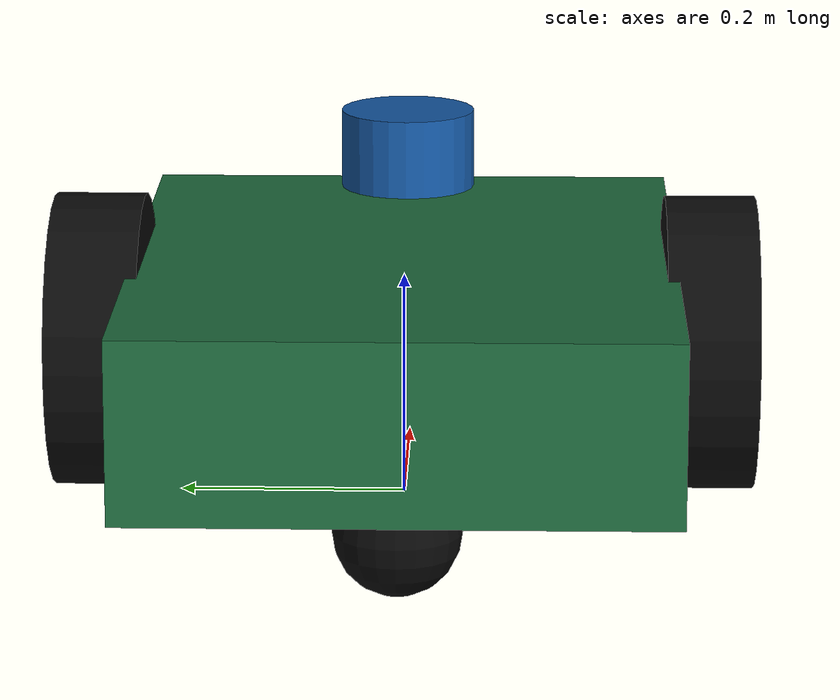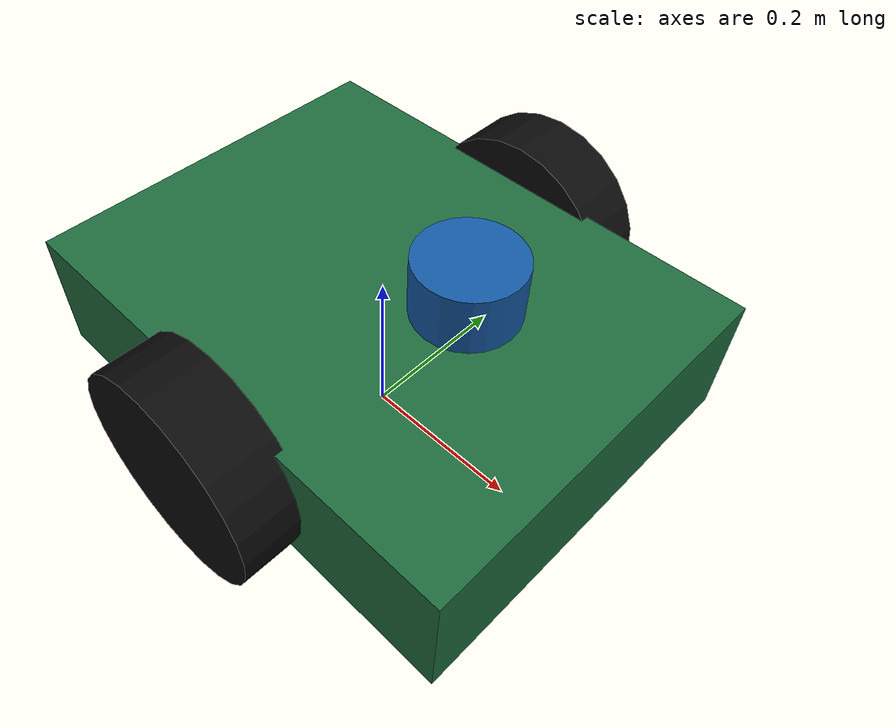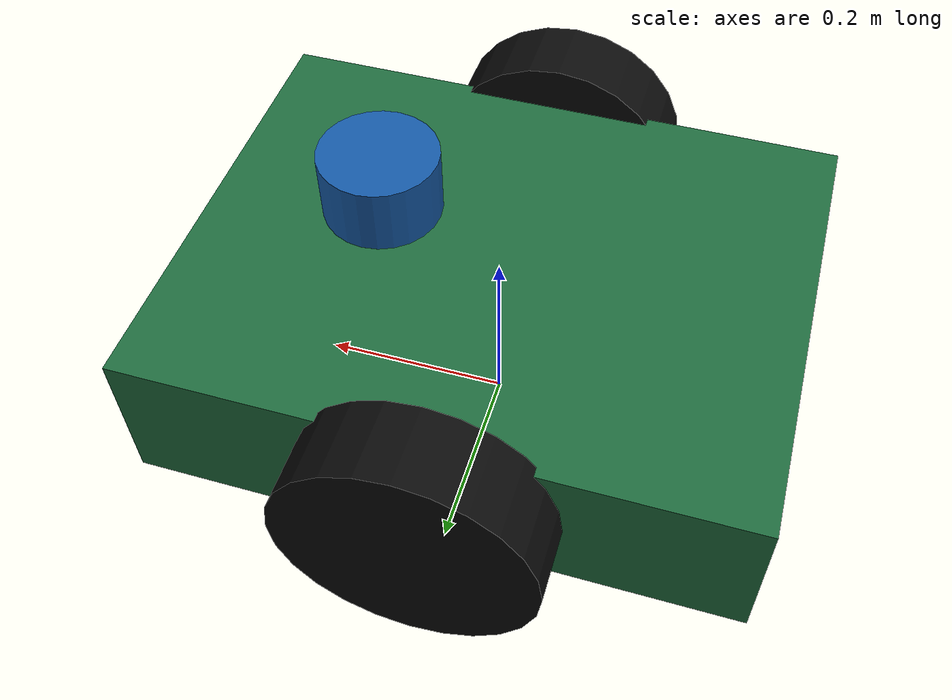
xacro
<?xml version="1.0"?>
<robot name="ubc_rover" xmlns:xacro="http://www.ros.org/wiki/xacro">
  <xacro:include filename="$(find rover_description)/urdf/materials.xacro"/>

  <xacro:property name="wheel_radius" value="0.13"/>
  <xacro:property name="wheel_width" value="0.08"/>
  <xacro:property name="wheel_y" value="0.27"/>

  <link name="base_footprint"/>
  <joint name="base_footprint_joint" type="fixed">
    <parent link="base_footprint"/><child link="base_link"/>
    <origin xyz="0 0 0.14"/>
  </joint>

  <link name="base_link">
    <visual><geometry><box size="0.62 0.48 0.16"/></geometry><material name="rover_green"/></visual>
    <collision><geometry><box size="0.62 0.48 0.16"/></geometry></collision>
    <inertial><mass value="18"/><origin xyz="0 0 0"/><inertia ixx="0.384" ixy="0" ixz="0" iyy="0.674" iyz="0" izz="0.762"/></inertial>
  </link>

  <xacro:macro name="drive_wheel" params="name y">
    <link name="${name}_wheel_link">
      <visual><origin rpy="1.5708 0 0"/><geometry><cylinder radius="${wheel_radius}" length="${wheel_width}"/></geometry><material name="dark_rubber"/></visual>
      <collision><origin rpy="1.5708 0 0"/><geometry><cylinder radius="${wheel_radius}" length="${wheel_width}"/></geometry></collision>
      <inertial><mass value="1.2"/><inertia ixx="0.006" ixy="0" ixz="0" iyy="0.01" iyz="0" izz="0.006"/></inertial>
    </link>
    <joint name="${name}_wheel_joint" type="continuous">
      <parent link="base_link"/><child link="${name}_wheel_link"/>
      <origin xyz="0 ${y} 0" rpy="0 0 0"/><axis xyz="0 1 0"/>
    </joint>
  </xacro:macro>
  <xacro:drive_wheel name="left" y="${wheel_y}"/>
  <xacro:drive_wheel name="right" y="-${wheel_y}"/>

  <link name="caster_link">
    <visual><geometry><sphere radius="0.055"/></geometry><material name="dark_rubber"/></visual>
    <collision><geometry><sphere radius="0.055"/></geometry></collision>
    <inertial><mass value="0.2"/><inertia ixx="0.0002" ixy="0" ixz="0" iyy="0.0002" iyz="0" izz="0.0002"/></inertial>
  </link>
  <joint name="caster_joint" type="fixed">
    <parent link="base_link"/><child link="caster_link"/><origin xyz="-0.25 0 -0.1"/>
  </joint>

  <link name="lidar_link">
    <visual><geometry><cylinder radius="0.06" length="0.07"/></geometry><material name="sensor_blue"/></visual>
    <collision><geometry><cylinder radius="0.06" length="0.07"/></geometry></collision>
    <inertial><mass value="0.25"/><inertia ixx="0.0002" ixy="0" ixz="0" iyy="0.0002" iyz="0" izz="0.0003"/></inertial>
  </link>
  <joint name="lidar_joint" type="fixed">
    <parent link="base_link"/><child link="lidar_link"/><origin xyz="0.12 0 0.15"/>
  </joint>

  <link name="imu_link"/>
  <joint name="imu_joint" type="fixed">
    <parent link="base_link"/><child link="imu_link"/><origin xyz="0 0 0.06"/>
  </joint>

  <gazebo reference="base_link"><material>Gazebo/Green</material></gazebo>
  <gazebo reference="left_wheel_link"><mu1>1.0</mu1><mu2>1.0</mu2></gazebo>
  <gazebo reference="right_wheel_link"><mu1>1.0</mu1><mu2>1.0</mu2></gazebo>

  <gazebo>
    <plugin filename="gz-sim-diff-drive-system" name="gz::sim::systems::DiffDrive">
      <left_joint>left_wheel_joint</left_joint>
      <right_joint>right_wheel_joint</right_joint>
      <wheel_separation>${2 * wheel_y}</wheel_separation>
      <wheel_radius>${wheel_radius}</wheel_radius>
      <topic>cmd_vel</topic><odom_topic>odom</odom_topic><frame_id>odom</frame_id><child_frame_id>base_footprint</child_frame_id>
    </plugin>
    <plugin filename="gz-sim-joint-state-publisher-system" name="gz::sim::systems::JointStatePublisher"/>
  </gazebo>

  <gazebo reference="lidar_link">
    <sensor name="lidar" type="gpu_lidar">
      <topic>scan</topic><update_rate>10</update_rate><always_on>true</always_on><visualize>true</visualize>
      <lidar><scan><horizontal><samples>720</samples><resolution>1</resolution><min_angle>-3.14159</min_angle><max_angle>3.14159</max_angle></horizontal></scan>
        <range><min>0.12</min><max>12.0</max><resolution>0.01</resolution></range>
      </lidar>
    </sensor>
  </gazebo>

  <gazebo reference="imu_link">
    <sensor name="imu" type="imu"><topic>imu/data</topic><update_rate>50</update_rate><always_on>true</always_on></sensor>
  </gazebo>
</robot>

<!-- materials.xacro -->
<robot xmlns:xacro="http://www.ros.org/wiki/xacro">
  <material name="rover_green"><color rgba="0.12 0.42 0.24 1"/></material>
  <material name="dark_rubber"><color rgba="0.04 0.04 0.04 1"/></material>
  <material name="sensor_blue"><color rgba="0.08 0.35 0.65 1"/></material>
</robot>
